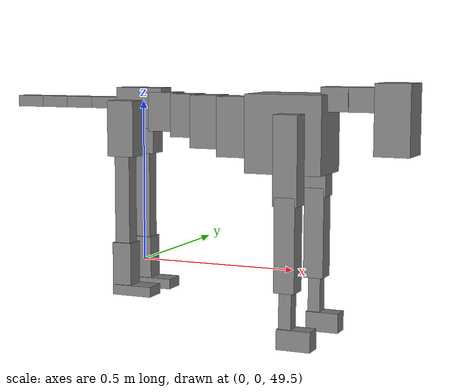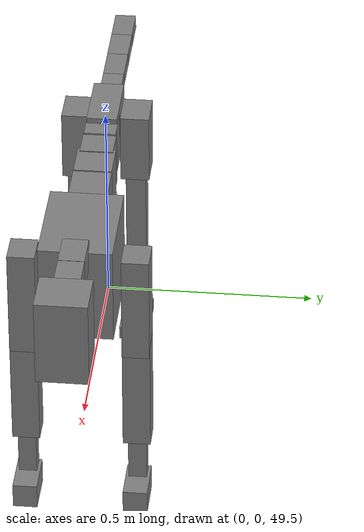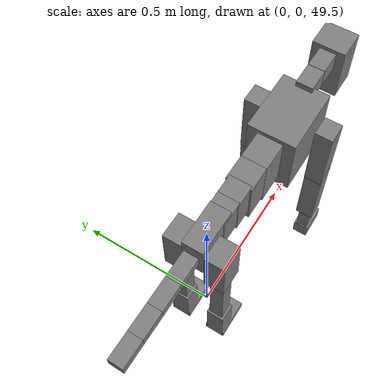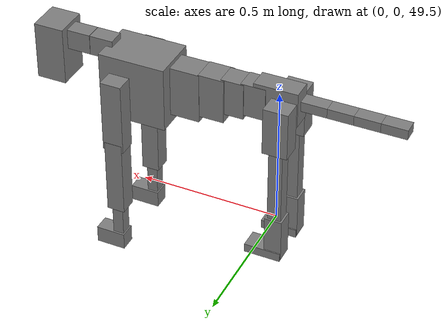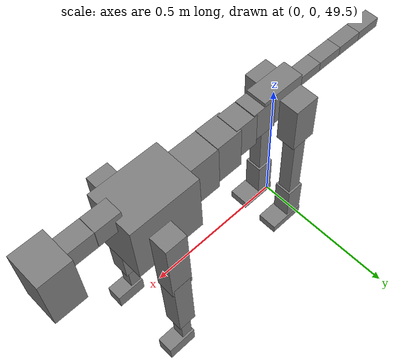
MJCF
<mujoco model="dog">

    <default>
        <joint armature="0.02" stiffness="1" damping="0.2" limited="true"/>
        <geom condim="3" friction="1 0.05 0.05" margin="0.01"/>
        <motor ctrllimited="true" ctrlrange="-1.0 1.0" forcelimited="true" gear="50"/>
    </default>

    <compiler inertiafromgeom="true" angle="radian"/>

    <option timestep="0.016" iterations="50" tolerance="1e-10" solver="Newton" jacobian="dense" cone="pyramidal"/>

    <size nconmax="20000" njmax="60000" nstack="5000000"/>
    <visual>
        <map force="0.1" zfar="30"/>
        <rgba haze="0.15 0.25 0.35 1"/>
        <quality shadowsize="2048"/>
        <global offwidth="800" offheight="800"/>
    </visual>

    <asset>
        <texture type="skybox" builtin="gradient" rgb1="0.3 0.5 0.7" rgb2="0 0 0" width="512" height="512"/>
        <texture name="texplane" type="2d" builtin="checker" rgb1=".2 .3 .4" rgb2=".1 0.15 0.2" width="512" height="512"
                 mark="cross" markrgb=".8 .8 .8"/>
        <texture name="texgeom" type="cube" builtin="flat" mark="cross" width="127" height="1278" rgb1="0.8 0.6 0.4"
                 rgb2="0.8 0.6 0.4" markrgb="1 1 1" random="0.01"/>

        <material name="matplane" reflectance="0.3" texture="texplane" texrepeat="1 1" texuniform="true"/>
        <material name="matgeom" texture="texgeom" texuniform="true" rgba="0.8 0.6 .4 1"/>
    </asset>

    <worldbody>
        <geom name="floor" pos="0 0 0" size="0 0 .25" type="plane" material="matplane" condim="3"/>

        <light directional="false" diffuse=".2 .2 .2" specular="0 0 0" pos="0 0 5" dir="0 0 -1" castshadow="false"/>
        <light mode="targetbodycom" target="torso" directional="false" diffuse=".8 .8 .8" specular="0.3 0.3 0.3"
               pos="0 0 4.0" dir="0 0 -1"/>

        <body name="root" pos="0 0 50">
            <freejoint name="root_1"/>
            <geom type="box" pos="0 0 -0.02" size="0.0774  0.0358  0.063" density="2030"/>

            <body name="spine1" pos="0.054 0 0">
                <joint name="spine1_y" axis="0 1 0" range="0 0.7" limited="true"/>
                <geom type="box" pos="0.02375 0 -0.03" size="0.04375  0.0375  0.05985" density="2030"/>

                <body name="spine2" pos="0.0612 0 0">
                    <joint name="spine2_y" axis="0 1 0" range="-0.15 0.15" limited="true"/>
                    <geom type="box" pos="0.03555  0  -0.04" size="0.04055  0.039  0.06615" density="2030"/>

                    <body name="spine3" pos="0.0730 0 0">
                        <joint name="spine3_y" axis="0 1 0" range="-0.15 0.15" limited="true"/>
                        <geom type="box" pos="0.03555  0  -0.057" size="0.04555  0.0445  0.081" density="2030"/>

                        <body name="spine4" pos="0.0780 0 0">
                            <joint name="spine4_y" axis="0 1 0" range="-0.15 0.15" limited="true"/>
                            <geom type="box" pos="0.05265  0  -0.07" size="0.05265  0.045  0.09135" density="2030"/>

                            <body name="torso" pos="0.1082 0 0">
                                <joint name="torso_y" axis="0 1 0" range="-0.15 0.15" limited="true"/>
                                <geom type="box" pos="0.11925  0  -0.085" size="0.11925  0.085  0.11745"
                                      density="2030"/>

                                <body name="neck1" pos="0.2160  0   0.0180">
                                    <joint name="neck1_y" axis="0 1 0" range="-1.2  -1" limited="true"/>
                                    <geom type="box" pos="0.0423  0  0" size="0.0423  0.03  0.036" density="2325"/>

                                    <body name="neck2" pos="0.0853  0  0">
                                        <joint name="neck2_y" axis="0 1 0" range="0.1  0" limited="true"/>
                                        <geom type="box" pos="0.0423  0  0" size="0.0423  0.03  0.036" density="2325"/>

                                        <body name="head" pos="0.0853  0  0">
                                            <joint name="head_y" axis="0 1 0" range="-0.3  -0.2" limited="true"/>
                                            <geom type="box" pos="0.0531  0  -0.055" size="0.0531  0.06  0.1044"
                                                  density="4030"/>

                                        </body>
                                    </body>
                                </body>

                                <body name="front_shoulder" pos="0.156  0   -0.0480">
                                    <joint name="front_shoulder_y" axis="0 1 0" range="-1 1.5" limited="true"/>
                                    <geom type="box" pos="0 0.13 -0.1055" size="0.0371  0.0317  0.1321" density="1158"/>
                                    <geom type="box" pos="0 -0.13 -0.1055" size="0.0371  0.0317  0.1321"
                                          density="1158"/>

                                    <body name="front_elbow" pos="0  0  -0.2109">
                                        <joint name="front_elbow_y" axis="0 1 0" range="-2 0" limited="true"/>
                                        <geom type="box" pos="0 0.13 -0.1400" size="0.0316  0.0323  0.1400"
                                              density="1081"/>
                                        <geom type="box" pos="0 -0.13 -0.1400" size="0.0316  0.0323  0.1400"
                                              density="1081"/>

                                        <body name="front_wrist" pos="0  0  -0.2800">
                                            <joint name="front_wrist_y" axis="0 1 0" range="-0.2 0" limited="true"/>
                                            <geom type="box" pos="0 0.13 -0.0612" size="0.0193  0.0214  0.0744"
                                                  density="1664"/>
                                            <geom type="box" pos="0 -0.13 -0.0612" size="0.0193  0.0214  0.0744"
                                                  density="1664"/>

                                            <body name="front_finger_end" pos="0  0  -0.1225">
                                                <joint name="front_finger_y" axis="0 1 0" range="-0.4 1"
                                                       limited="true"/>
                                                <geom type="box" pos="0.0285  0.13  -0.0155"
                                                      size="0.0523  0.0285  0.0305" density="1515"/>
                                                <geom type="box" pos="0.0285  -0.13  -0.0155"
                                                      size="0.0523  0.0285  0.0305" density="1515"/>

                                            </body>

                                        </body>
                                    </body>
                                </body>

                            </body>
                        </body>
                    </body>
                </body>
            </body>

            <body name="back_hip" pos="-0.03 0 -0.018">
                <joint name="back_hip_y" axis="0 1 0" range="-1.5 0.3" limited="true"/>
                <geom type="box" pos="0 0.07 -0.0632" size="0.0438  0.0344  0.0860" density="1154"/>
                <geom type="box" pos="0 -0.07 -0.0632" size="0.0438  0.0344  0.0860" density="1154"/>

                <body name="back_knee" pos="0  0  -0.1264">
                    <joint name="back_knee_y" axis="0 1 0" range="0 2.8" limited="true"/>
                    <geom type="box" pos="0 0.07 -0.1518" size="0.0244  0.0240  0.1673" density="1227"/>
                    <geom type="box" pos="0 -0.07 -0.1518" size="0.0244  0.0240  0.1673" density="1227"/>

                    <body name="back_ankle" pos="0  0  -0.3035">
                        <joint name="back_ankle_y" axis="0 1 0" range="-2.2 0" limited="true"/>
                        <geom type="box" pos="0 0.07 -0.0679" size="0.0310  0.0310  0.0791" density="1284"/>
                        <geom type="box" pos="0 -0.07 -0.0679" size="0.0310  0.0310  0.0791" density="1284"/>

                        <body name="back_toe_end" pos="0  0  -0.1358">
                            <joint name="back_toe_y" axis="0 1 0" range="-0.4 1" limited="true"/>
                            <geom type="box" pos="0.0353  0.07  -0.0009" size="0.0648  0.0353  0.0159" density="1515"/>
                            <geom type="box" pos="0.0353  -0.07  -0.0009" size="0.0648  0.0353  0.0159" density="1515"/>

                        </body>
                    </body>
                </body>
            </body>

            <body name="tail1" pos="-0.074 0 -0.006">
                <joint name="tail1_y" axis="0 1 0" range="-0.2 0.2" limited="true"/>
                <geom type="box" pos="-0.0536  0  0" size="0.045  0.025  0.0175" density="1587"/>

                <body name="tail2" pos="-0.09 0 0">
                    <joint name="tail2_y" axis="0 1 0" range="-0.2 0.2" limited="true"/>
                    <geom type="box" pos="-0.0536  0  0" size="0.045  0.025  0.0175" density="1587"/>

                    <body name="tail3" pos="-0.09 0 0">
                        <joint name="tail3_y" axis="0 1 0" range="-0.2 0.2" limited="true"/>
                        <geom type="box" pos="-0.0536  0  0" size="0.045  0.025  0.0175" density="1587"/>

                        <body name="tail4" pos="-0.09 0 0">
                            <joint name="tail4_y" axis="0 1 0" range="-0.2 0.2" limited="true"/>
                            <geom type="box" pos="-0.0536  0  0" size="0.045  0.025  0.0175" density="1587"/>

                        </body>
                    </body>
                </body>
            </body>
        </body>
    </worldbody>

    <actuator>
        <motor joint="spine1_y" forcerange="-150 150     "/>
        <motor joint="spine2_y" forcerange="-150 150     "/>
        <motor joint="spine3_y" forcerange="-150 150     "/>
        <motor joint="spine4_y" forcerange="-150 150     "/>
        <motor joint="torso_y" forcerange="-150 150     "/>
        <motor joint="neck1_y" forcerange="-100 100       "/>
        <motor joint="neck2_y" forcerange="-100 100       "/>
        <motor joint="head_y" forcerange="-150 150       "/>
        <motor joint="front_shoulder_y" forcerange="-145.12 166.27"/>
        <motor joint="front_elbow_y" forcerange="-194.26 140.58"/>
        <motor joint="front_wrist_y" forcerange="-56.69 114.82"/>
        <motor joint="front_finger_y" forcerange="-35.96 76.28"/>
        <motor joint="back_hip_y" forcerange="-294.75 363.42"/>
        <motor joint="back_knee_y" forcerange="-203.98 345.73"/>
        <motor joint="back_angle_y" forcerange="-166.15 229.07"/>
        <motor joint="back_toe_y" forcerange="-83.24 119.52"/>
        <motor joint="tail1_y" forcerange="-50 50     "/>
        <motor joint="tail2_y" forcerange="-50 50     "/>
        <motor joint="tail3_y" forcerange="-50 50     "/>
        <motor joint="tail4_y" forcerange="-50 50     "/>
    </actuator>
</mujoco>
